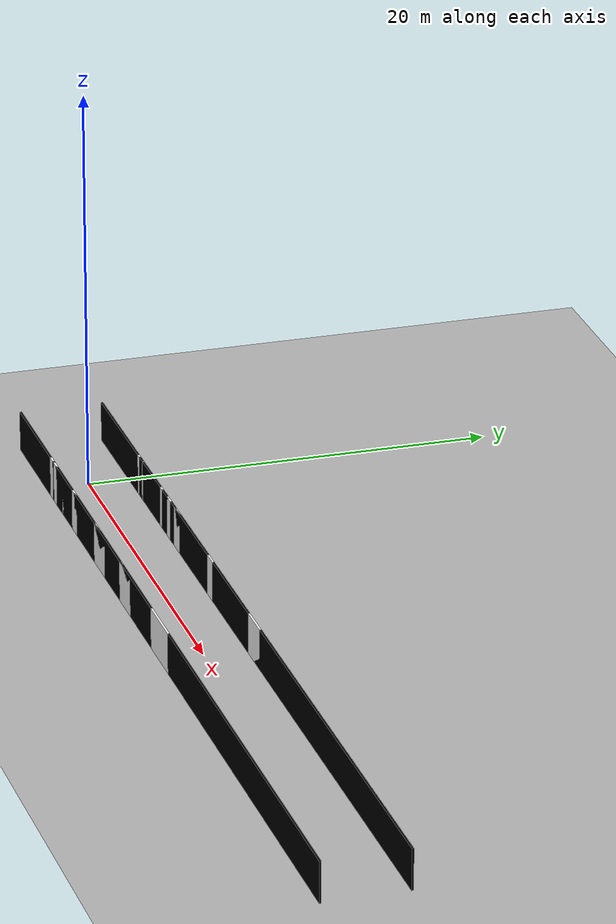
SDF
<?xml version="1.0" ?>
<sdf version="1.9">
  <world name="corridors_intensities">
    <physics name="1ms" type="ignored">
      <max_step_size>0.001</max_step_size>
      <real_time_factor>1.0</real_time_factor>
    </physics>
    <scene>
      <ambient>0.4 0.4 0.4 1</ambient>
      <background>0.7 0.7 0.7 1</background>
      <shadows>true</shadows>
    </scene>
    <model name="ground_plane">
      <static>true</static>
      <link name="link">
        <collision name="collision">
          <geometry>
            <plane>
              <normal>0 0 1</normal>
              <size>100 100</size>
            </plane>
          </geometry>
          <surface>
            <contact>
              <collide_bitmask>65535</collide_bitmask>
              <ode />
            </contact>
            <friction>
              <ode>
                <mu>100</mu>
                <mu2>50</mu2>
              </ode>
              <torsional>
                <ode />
              </torsional>
            </friction>
            <bounce />
          </surface>
          <max_contacts>10</max_contacts>
        </collision>
        <visual name="visual">
          <cast_shadows>false</cast_shadows>
          <geometry>
            <plane>
              <normal>0 0 1</normal>
              <size>100 100</size>
            </plane>
          </geometry>
          <material>
            <ambient>0.7 0.7 0.7 1</ambient>
            <diffuse>0.7 0.7 0.7 1</diffuse>
            <specular>0.1 0.1 0.1 1</specular>
          </material>
        </visual>
        <self_collide>false</self_collide>
        <enable_wind>false</enable_wind>
        <kinematic>false</kinematic>
      </link>
    </model>
    <light name="sun" type="directional">
      <cast_shadows>true</cast_shadows>
      <pose>0 0 10 0 0 0</pose>
      <diffuse>0.8 0.8 0.8 1</diffuse>
      <specular>0.2 0.2 0.2 1</specular>
      <attenuation>
        <range>1000</range>
        <constant>0.9</constant>
        <linear>0.01</linear>
        <quadratic>0.001</quadratic>
      </attenuation>
      <direction>-0.5 0.1 -0.9</direction>
    </light>
    <model name="wall_D">
      <static>true</static>
      <pose>20 2.05 1 0 0 0</pose>
      <link name="link">
        <collision name="wall">
          <laser_retro>0</laser_retro>
          <geometry>
            <box>
              <size>50.0 0.10 2</size>
            </box>
          </geometry>
        </collision>
        <visual name="vis">
          <geometry>
            <box>
              <size>50.0 0.10 2</size>
            </box>
          </geometry>
          <material>
            <ambient>0.0 0.0 0.0 1</ambient>
            <diffuse>0.0 0.0 0.0 1</diffuse>
          </material>
        </visual>
      </link>
    </model>
    <model name="wall_I">
      <static>true</static>
      <pose>20 -2.05 1 0 0 0</pose>
      <link name="link">
        <collision name="wall">
          <laser_retro>0</laser_retro>
          <geometry>
            <box>
              <size>50.0 0.10 2</size>
            </box>
          </geometry>
        </collision>
        <visual name="vis">
          <geometry>
            <box>
              <size>50.0 0.10 2</size>
            </box>
          </geometry>
          <material>
            <ambient>0.0 0.0 0.0 1</ambient>
            <diffuse>0.0 0.0 0.0 1</diffuse>
          </material>
        </visual>
      </link>
    </model>
    <model name="wall_D_R_1">
      <static>true</static>
      <pose>1 -2.05 1 0 0 0</pose>
      <link name="link">
        <collision name="wall">
          <laser_retro>255</laser_retro>
          <geometry>
            <box>
              <size>0.5 0.10 2</size>
            </box>
          </geometry>
        </collision>
        <visual name="vis">
          <geometry>
            <box>
              <size>0.5 0.10 2</size>
            </box>
          </geometry>
          <material>
            <ambient>1.0 1.0 1.0 1</ambient>
            <diffuse>1.0 1.0 1.0 1</diffuse>
          </material>
        </visual>
      </link>
    </model>
    <model name="wall_D_R_2">
      <static>true</static>
      <pose>1.7 -2.05 1 0 0 0</pose>
      <link name="link">
        <collision name="wall">
          <laser_retro>205</laser_retro>
          <geometry>
            <box>
              <size>0.55 0.10 2</size>
            </box>
          </geometry>
        </collision>
        <visual name="vis">
          <geometry>
            <box>
              <size>0.55 0.10 2</size>
            </box>
          </geometry>
          <material>
            <ambient>1.0 1.0 1.0 1</ambient>
            <diffuse>1.0 1.0 1.0 1</diffuse>
          </material>
        </visual>
      </link>
    </model>
    <model name="wall_D_R_3">
      <static>true</static>
      <pose>3.2 -2.05 1 0 0 0</pose>
      <link name="link">
        <collision name="wall">
          <laser_retro>155</laser_retro>
          <geometry>
            <box>
              <size>0.35 0.10 2</size>
            </box>
          </geometry>
        </collision>
        <visual name="vis">
          <geometry>
            <box>
              <size>0.35 0.10 2</size>
            </box>
          </geometry>
          <material>
            <ambient>1.0 1.0 1.0 1</ambient>
            <diffuse>1.0 1.0 1.0 1</diffuse>
          </material>
        </visual>
      </link>
    </model>
    <model name="wall_D_R_4">
      <static>true</static>
      <pose>5.2 -2.05 1 0 0 0</pose>
      <link name="link">
        <collision name="wall">
          <laser_retro>235</laser_retro>
          <geometry>
            <box>
              <size>0.85 0.10 2</size>
            </box>
          </geometry>
        </collision>
        <visual name="vis">
          <geometry>
            <box>
              <size>0.85 0.10 2</size>
            </box>
          </geometry>
          <material>
            <ambient>1.0 1.0 1.0 1</ambient>
            <diffuse>1.0 1.0 1.0 1</diffuse>
          </material>
        </visual>
      </link>
    </model>
    <model name="wall_D_R_5">
      <static>true</static>
      <pose>9.7 -2.05 1 0 0 0</pose>
      <link name="link">
        <collision name="wall">
          <laser_retro>95</laser_retro>
          <geometry>
            <box>
              <size>1.85 0.10 2</size>
            </box>
          </geometry>
        </collision>
        <visual name="vis">
          <geometry>
            <box>
              <size>1.85 0.10 2</size>
            </box>
          </geometry>
          <material>
            <ambient>1.0 1.0 1.0 1</ambient>
            <diffuse>1.0 1.0 1.0 1</diffuse>
          </material>
        </visual>
      </link>
    </model>
    <model name="wall_D_R_6">
      <static>true</static>
      <pose>14.17 -2.05 1 0 0 0</pose>
      <link name="link">
        <collision name="wall">
          <laser_retro>255</laser_retro>
          <geometry>
            <box>
              <size>1.85 0.10 2</size>
            </box>
          </geometry>
        </collision>
        <visual name="vis">
          <geometry>
            <box>
              <size>1.85 0.10 2</size>
            </box>
          </geometry>
          <material>
            <ambient>1.0 1.0 1.0 1</ambient>
            <diffuse>1.0 1.0 1.0 1</diffuse>
          </material>
        </visual>
      </link>
    </model>
    <model name="wall_D_R_7">
      <static>true</static>
      <pose>20.07 -2.05 1 0 0 0</pose>
      <link name="link">
        <collision name="wall">
          <laser_retro>255</laser_retro>
          <geometry>
            <box>
              <size>2.85 0.10 2</size>
            </box>
          </geometry>
        </collision>
        <visual name="vis">
          <geometry>
            <box>
              <size>2.85 0.10 2</size>
            </box>
          </geometry>
          <material>
            <ambient>1.0 1.0 1.0 1</ambient>
            <diffuse>1.0 1.0 1.0 1</diffuse>
          </material>
        </visual>
      </link>
    </model>
    <model name="wall_I_R_1">
      <static>true</static>
      <pose>1.8 2.05 1 0 0 0</pose>
      <link name="link">
        <collision name="wall">
          <laser_retro>155</laser_retro>
          <geometry>
            <box>
              <size>0.25 0.10 2</size>
            </box>
          </geometry>
        </collision>
        <visual name="vis">
          <geometry>
            <box>
              <size>0.25 0.10 2</size>
            </box>
          </geometry>
          <material>
            <ambient>1.0 1.0 1.0 1</ambient>
            <diffuse>1.0 1.0 1.0 1</diffuse>
          </material>
        </visual>
      </link>
    </model>
    <model name="wall_I_R_2">
      <static>true</static>
      <pose>2.5 2.05 1 0 0 0</pose>
      <link name="link">
        <collision name="wall">
          <laser_retro>255</laser_retro>
          <geometry>
            <box>
              <size>0.15 0.10 2</size>
            </box>
          </geometry>
        </collision>
        <visual name="vis">
          <geometry>
            <box>
              <size>0.15 0.10 2</size>
            </box>
          </geometry>
          <material>
            <ambient>1.0 1.0 1.0 1</ambient>
            <diffuse>1.0 1.0 1.0 1</diffuse>
          </material>
        </visual>
      </link>
    </model>
    <model name="wall_I_R_3">
      <static>true</static>
      <pose>5.8 2.05 1 0 0 0</pose>
      <link name="link">
        <collision name="wall">
          <laser_retro>155</laser_retro>
          <geometry>
            <box>
              <size>0.35 0.10 2</size>
            </box>
          </geometry>
        </collision>
        <visual name="vis">
          <geometry>
            <box>
              <size>0.35 0.10 2</size>
            </box>
          </geometry>
          <material>
            <ambient>1.0 1.0 1.0 1</ambient>
            <diffuse>1.0 1.0 1.0 1</diffuse>
          </material>
        </visual>
      </link>
    </model>
    <model name="wall_I_R_4">
      <static>true</static>
      <pose>7.1 2.05 1 0 0 0</pose>
      <link name="link">
        <collision name="wall">
          <laser_retro>135</laser_retro>
          <geometry>
            <box>
              <size>0.55 0.10 2</size>
            </box>
          </geometry>
        </collision>
        <visual name="vis">
          <geometry>
            <box>
              <size>0.55 0.10 2</size>
            </box>
          </geometry>
          <material>
            <ambient>1.0 1.0 1.0 1</ambient>
            <diffuse>1.0 1.0 1.0 1</diffuse>
          </material>
        </visual>
      </link>
    </model>
    <model name="wall_I_R_5">
      <static>true</static>
      <pose>8.5 2.05 1 0 0 0</pose>
      <link name="link">
        <collision name="wall">
          <laser_retro>175</laser_retro>
          <geometry>
            <box>
              <size>0.95 0.10 2</size>
            </box>
          </geometry>
        </collision>
        <visual name="vis">
          <geometry>
            <box>
              <size>0.95 0.10 2</size>
            </box>
          </geometry>
          <material>
            <ambient>1.0 1.0 1.0 1</ambient>
            <diffuse>1.0 1.0 1.0 1</diffuse>
          </material>
        </visual>
      </link>
    </model>
    <model name="wall_I_R_6">
      <static>true</static>
      <pose>14.17 2.05 1 0 0 0</pose>
      <link name="link">
        <collision name="wall">
          <laser_retro>255</laser_retro>
          <geometry>
            <box>
              <size>0.85 0.10 2</size>
            </box>
          </geometry>
        </collision>
        <visual name="vis">
          <geometry>
            <box>
              <size>0.85 0.10 2</size>
            </box>
          </geometry>
          <material>
            <ambient>1.0 1.0 1.0 1</ambient>
            <diffuse>1.0 1.0 1.0 1</diffuse>
          </material>
        </visual>
      </link>
    </model>
    <model name="wall_I_R_7">
      <static>true</static>
      <pose>21.37 2.05 1 0 0 0</pose>
      <link name="link">
        <collision name="wall">
          <laser_retro>255</laser_retro>
          <geometry>
            <box>
              <size>1.85 0.10 2</size>
            </box>
          </geometry>
        </collision>
        <visual name="vis">
          <geometry>
            <box>
              <size>1.85 0.10 2</size>
            </box>
          </geometry>
          <material>
            <ambient>1.0 1.0 1.0 1</ambient>
            <diffuse>1.0 1.0 1.0 1</diffuse>
          </material>
        </visual>
      </link>
    </model>
    <gui>
      <camera name="user_camera">
        <pose>0.05 -0.05 7.2048 0 1.570796 0</pose>
        <view_controller>orbit</view_controller>
        <projection_type>orthographic</projection_type>
      </camera>
    </gui>
  </world>
</sdf>
